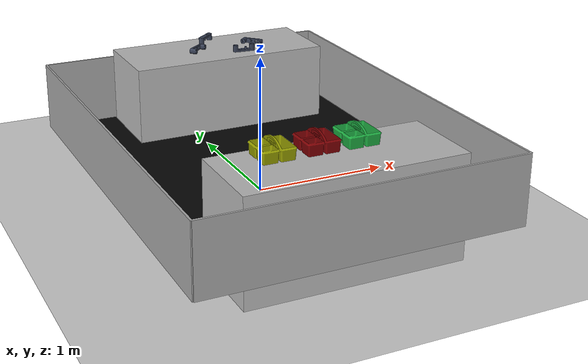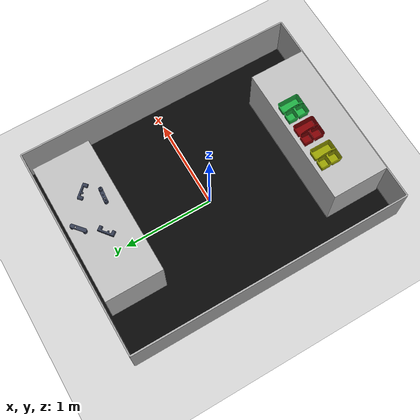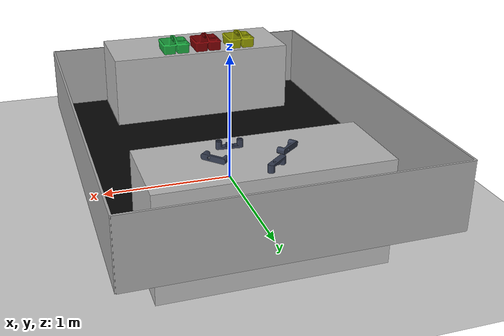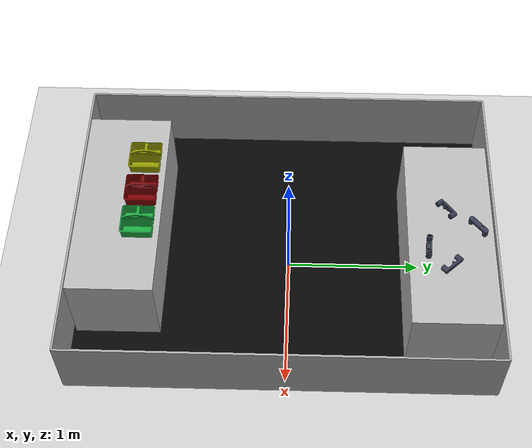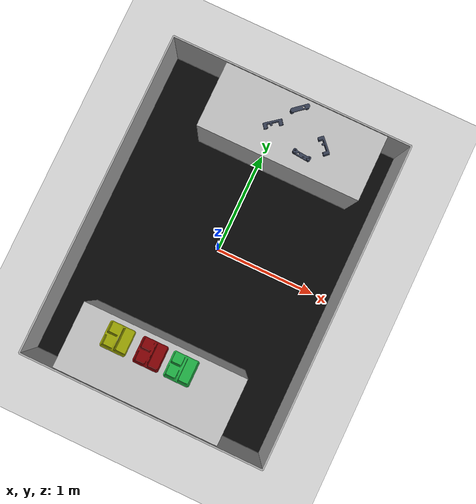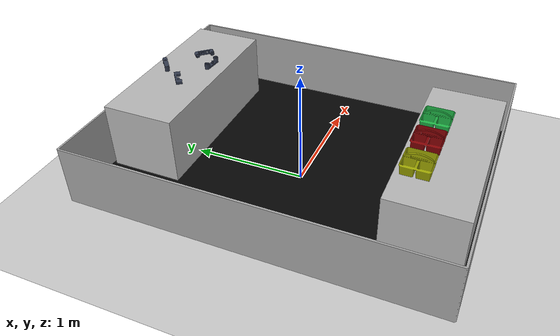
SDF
<?xml version="1.0" ?>
<sdf version="1.4">
  <world name="default">

    <include>
      <uri>model://ground_plane</uri>
      <pose>0 0 -0.005 0 0 0</pose>
    </include>

    <include>
      <uri>model://nec0115a_arena</uri>
      <name>nec0115a_arena</name>
      <pose>0 0 0.24 0 0 0</pose>
    </include>

    <include>
      <uri>model://rarelab_long_table</uri>
      <name>gearbox_table</name>
      <pose>0.920161 1.457626 0.0 0 0 -3.141585</pose>
    </include>

    <include>
      <uri>model://rarelab_long_table</uri>
      <name>caddy_table</name>
      <pose>0.710161 -0.915409 0.0 0 0 -3.141585</pose>
    </include>

    <include>
      <uri>model://caddy_green</uri>
      <name>caddy_green1</name>
      <pose>0.168355 -1.06637 0.775 0 0 0</pose>
    </include>

    <include>
      <uri>model://caddy_red</uri>
      <name>caddy_red1</name>
      <pose>-0.113059 -1.06637 0.775 0 0 0</pose>
    </include>

    <include>
      <uri>model://caddy_yellow</uri>
      <name>caddy_yellow1</name>
      <pose>-0.414898 -1.06637 0.775 0 0 0</pose>
    </include>

    <include>
      <uri>model://gearbox_bottom_grey</uri>
      <name>gearbox_bottom_grey1</name>
      <pose>0.317473 0.990266 0.734993 0 0 -0.085</pose>
    </include>
    <include>
      <uri>model://gearbox_bottom_grey</uri>
      <name>gearbox_bottom_grey2</name>
      <pose>0.4746881 1.160252 0.754964 -1.570796 0 2.317278</pose>
    </include>

    <include>
      <uri>model://gearbox_bottom_grey</uri>
      <name>gearbox_bottom_grey3</name>
      <pose>0.137713 1.347056 0.787368 3.141546 0 -2.437420</pose>
    </include>

    <include>
      <uri>model://gearbox_bottom_grey</uri>
      <name>gearbox_bottom_grey4</name>
      <pose>-0.031035 1.150975 0.754964 -1.570796 0 -2.472675</pose>
    </include>

    <light name='user_point_light_0' type='point'>
      <pose frame=''>4.0 4.0 3.5 0 0 0</pose>
      <diffuse>0.7 0.7 0.7 1</diffuse>
      <specular>0.1 0.1 0.1 1</specular>
      <attenuation>
        <range>10</range>
        <constant>1.5</constant>
        <linear>0.01</linear>
        <quadratic>0.001</quadratic>
      </attenuation>
      <cast_shadows>0</cast_shadows>
      <direction>0 0 -1</direction>
    </light>

    <light name='user_point_light_1' type='point'>
      <pose frame=''>-4.0 4.0 3.5 0 0 0</pose>
      <diffuse>0.7 0.7 0.7 1</diffuse>
      <specular>0.1 0.1 0.1 1</specular>
      <attenuation>
        <range>10</range>
        <constant>1.5</constant>
        <linear>0.01</linear>
        <quadratic>0.001</quadratic>
      </attenuation>
      <cast_shadows>0</cast_shadows>
      <direction>0 0 -1</direction>
    </light>

    <light name='user_point_light_2' type='point'>
      <pose frame=''>-4.0 -4.0 3.5 0 0 0</pose>
      <diffuse>0.7 0.7 0.7 1</diffuse>
      <specular>0.1 0.1 0.1 1</specular>
      <attenuation>
        <range>10</range>
        <constant>1.5</constant>
        <linear>0.01</linear>
        <quadratic>0.001</quadratic>
      </attenuation>
      <cast_shadows>0</cast_shadows>
      <direction>0 0 -1</direction>
    </light>

    <light name='user_point_light_3' type='point'>
      <pose frame=''>4.0 -4.0 3.5 0 0 0</pose>
      <diffuse>0.7 0.7 0.7 1</diffuse>
      <specular>0.1 0.1 0.1 1</specular>
      <attenuation>
        <range>10</range>
        <constant>1.5</constant>
        <linear>0.01</linear>
        <quadratic>0.001</quadratic>
      </attenuation>
      <cast_shadows>0</cast_shadows>
      <direction>0 0 -1</direction>
    </light>

  </world>
</sdf>

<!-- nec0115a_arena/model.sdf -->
<sdf version='1.4'>
  <model name="nec0115a_env">
      <static>1</static>
      <link name='link'>
        <visual name='visual'>
          <geometry>
            <mesh>
              <uri>model://nec0115a_arena/meshes/nec0115a_arena.dae</uri>
              <scale>1 1 1</scale>
            </mesh>
          </geometry>
        </visual>
        <collision name='collision'>
          <geometry>
            <mesh>
              <uri>model://nec0115a_arena/meshes/nec0115a_arena.dae</uri>
              <scale>1 1 1</scale>
            </mesh>
          </geometry>
          <surface>
            <friction>
              <ode>
                <mu>30.0</mu>
                <mu2>30.0</mu2>
              </ode>
            </friction>
            <contact>
              <ode>
                <soft_cfm>0</soft_cfm>
    	          <soft_erp>0.2</soft_erp>
    	          <kp>1e+13</kp>
    	          <kd>1</kd>
    	          <max_vel>0.01</max_vel>
    	          <min_depth>0</min_depth>
              </ode>
            </contact>
          </surface>
        </collision>
        <velocity_decay>
          <linear>0.000000</linear>
          <angular>0.000000</angular>
        </velocity_decay>
        <self_collide>0</self_collide>
        <kinematic>0</kinematic>
        <gravity>1</gravity>
      </link>
  </model>
</sdf>

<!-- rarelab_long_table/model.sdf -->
<sdf version='1.4'>
  <model name="rarelab_long_table">
      <static>1</static>
      <link name='link'>
        <inertial>
          <mass>0.0592855</mass>
          <inertia>
            <ixx>2.31818050784e-05</ixx>
            <ixy>0.000000</ixy>
            <ixz>0.000000</ixz>
            <iyy>2.31851837098e-05</iyy>
            <iyz>0.000000</iyz>
            <izz>8.88944636856e-06</izz>
          </inertia>
        </inertial>
        <collision name='collision'>
          <geometry>
            <mesh>
              <uri>model://rarelab_long_table/meshes/rarelab_long_table.stl</uri>
              <scale>1 1 1</scale>
            </mesh>
          </geometry>
          <surface>
            <friction>
              <ode>
                <mu>30.0</mu>
                <mu2>30.0</mu2>
              </ode>
            </friction>
          </surface>
        </collision>
        <visual name='visual'>
          <geometry>
            <mesh>
              <uri>model://rarelab_long_table/meshes/rarelab_long_table.dae</uri>
              <scale>1 1 1</scale>
            </mesh>
          </geometry>
        </visual>
        <velocity_decay>
          <linear>0.000000</linear>
          <angular>0.000000</angular>
        </velocity_decay>
        <self_collide>0</self_collide>
        <kinematic>0</kinematic>
        <gravity>1</gravity>
      </link>
  </model>
</sdf>

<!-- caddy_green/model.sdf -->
<sdf version='1.4'>
  <model name="caddy_green">
      <static>1</static>
      <link name='link'>
        <inertial>
          <mass>0.0680389</mass>
          <inertia>
            <ixx>0.00040636575898</ixx>
            <ixy>0.000000</ixy>
            <ixz>0.000000</ixz>
            <iyy>0.00040636575898</iyy>
            <iyz>0.000000</iyz>
            <izz>0.000625974918075</izz>
          </inertia>
        </inertial>
        <collision name='collision'>
          <geometry>
            <mesh>
              <uri>model://caddy_green/meshes/Romanoff_Small_Utility_Caddy_cof.stl</uri>
              <scale>1 1 1</scale>
            </mesh>
          </geometry>
          <surface>
            <friction>
              <ode>
                <mu>1.0</mu>
                <mu2>1.0</mu2>
              </ode>
            </friction>
          </surface>
        </collision>

        <visual name='visual'>
          <geometry>
            <mesh>
              <uri>model://caddy_green/meshes/Romanoff_Small_Utility_Caddy_cof_green.dae</uri>
              <scale>1 1 1</scale>
            </mesh>
          </geometry>
        </visual>
        <velocity_decay>
          <linear>0.000000</linear>
          <angular>0.000000</angular>
        </velocity_decay>
        <self_collide>0</self_collide>
        <kinematic>0</kinematic>
        <gravity>1</gravity>
      </link>
  </model>
</sdf>

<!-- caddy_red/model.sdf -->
<sdf version='1.4'>
  <model name="caddy_red">
      <static>1</static>
      <link name='link'>
        <inertial>
          <mass>0.0680389</mass>
          <inertia>
            <ixx>0.00040636575898</ixx>
            <ixy>0.000000</ixy>
            <ixz>0.000000</ixz>
            <iyy>0.00040636575898</iyy>
            <iyz>0.000000</iyz>
            <izz>0.000625974918075</izz>
          </inertia>
        </inertial>
        <collision name='collision'>
          <geometry>
            <mesh>
              <uri>model://caddy_red/meshes/Romanoff_Small_Utility_Caddy_cof.stl</uri>
              <scale>1 1 1</scale>
            </mesh>
          </geometry>
          <surface>
            <friction>
              <ode>
                <mu>1.0</mu>
                <mu2>1.0</mu2>
              </ode>
            </friction>
          </surface>
        </collision>

        <visual name='visual'>
          <geometry>
            <mesh>
              <uri>model://caddy_red/meshes/Romanoff_Small_Utility_Caddy_cof_red.dae</uri>
              <scale>1 1 1</scale>
            </mesh>
          </geometry>
        </visual>
        <velocity_decay>
          <linear>0.000000</linear>
          <angular>0.000000</angular>
        </velocity_decay>
        <self_collide>0</self_collide>
        <kinematic>0</kinematic>
        <gravity>1</gravity>
      </link>
  </model>
</sdf>

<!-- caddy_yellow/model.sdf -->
<sdf version='1.4'>
  <model name="caddy_yellow">
      <static>1</static>
      <link name='link'>
        <inertial>
          <mass>0.0680389</mass>
          <inertia>
            <ixx>0.00040636575898</ixx>
            <ixy>0.000000</ixy>
            <ixz>0.000000</ixz>
            <iyy>0.00040636575898</iyy>
            <iyz>0.000000</iyz>
            <izz>0.000625974918075</izz>
          </inertia>
        </inertial>
        <collision name='collision'>
          <geometry>
            <mesh>
              <uri>model://caddy_yellow/meshes/Romanoff_Small_Utility_Caddy_cof.stl</uri>
              <scale>1 1 1</scale>
            </mesh>
          </geometry>
          <surface>
            <friction>
              <ode>
                <mu>1.0</mu>
                <mu2>1.0</mu2>
              </ode>
            </friction>
          </surface>
        </collision>

        <visual name='visual'>
          <geometry>
            <mesh>
              <uri>model://caddy_yellow/meshes/Romanoff_Small_Utility_Caddy_cof_yellow.dae</uri>
              <scale>1 1 1</scale>
            </mesh>
          </geometry>
        </visual>
        <velocity_decay>
          <linear>0.000000</linear>
          <angular>0.000000</angular>
        </velocity_decay>
        <self_collide>0</self_collide>
        <kinematic>0</kinematic>
        <gravity>1</gravity>
      </link>
  </model>
</sdf>

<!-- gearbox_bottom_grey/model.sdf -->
<sdf version='1.4'>
  <model name="gearbox_bottom_grey">
      <static>1</static>
      <link name='link'>
        <inertial>
          <pose>0 0 0.0261852 0 0 0</pose>
          <mass>0.3705614</mass>
          <inertia>
            <ixx>0.000131217258397</ixx>
            <ixy>0.000000</ixy>
            <ixz>0.000000</ixz>
            <iyy>0.000981017941434</iyy>
            <iyz>0.000000</iyz>
            <izz>0.000942847952626</izz>
          </inertia>
        </inertial>
        <collision name='collision'>
          <geometry>
            <mesh>
              <uri>model://gearbox_bottom_grey/meshes/gearbox_bottom_simple.stl</uri>
              <scale>1 1 1</scale>
            </mesh>
          </geometry>
          <surface>
            <friction>
              <ode>
                <mu>30.0</mu>
                <mu2>30.0</mu2>
              </ode>
            </friction>
          </surface>
        </collision>
        <visual name='visual'>
          <geometry>
            <mesh>
              <uri>model://gearbox_bottom_grey/meshes/gearBoxBottom_grey.dae</uri>
              <scale>1 1 1</scale>
            </mesh>
          </geometry>
        </visual>
        <velocity_decay>
          <linear>0.000000</linear>
          <angular>0.000000</angular>
        </velocity_decay>
        <self_collide>0</self_collide>
        <kinematic>0</kinematic>
        <gravity>1</gravity>
      </link>
  </model>
</sdf>
